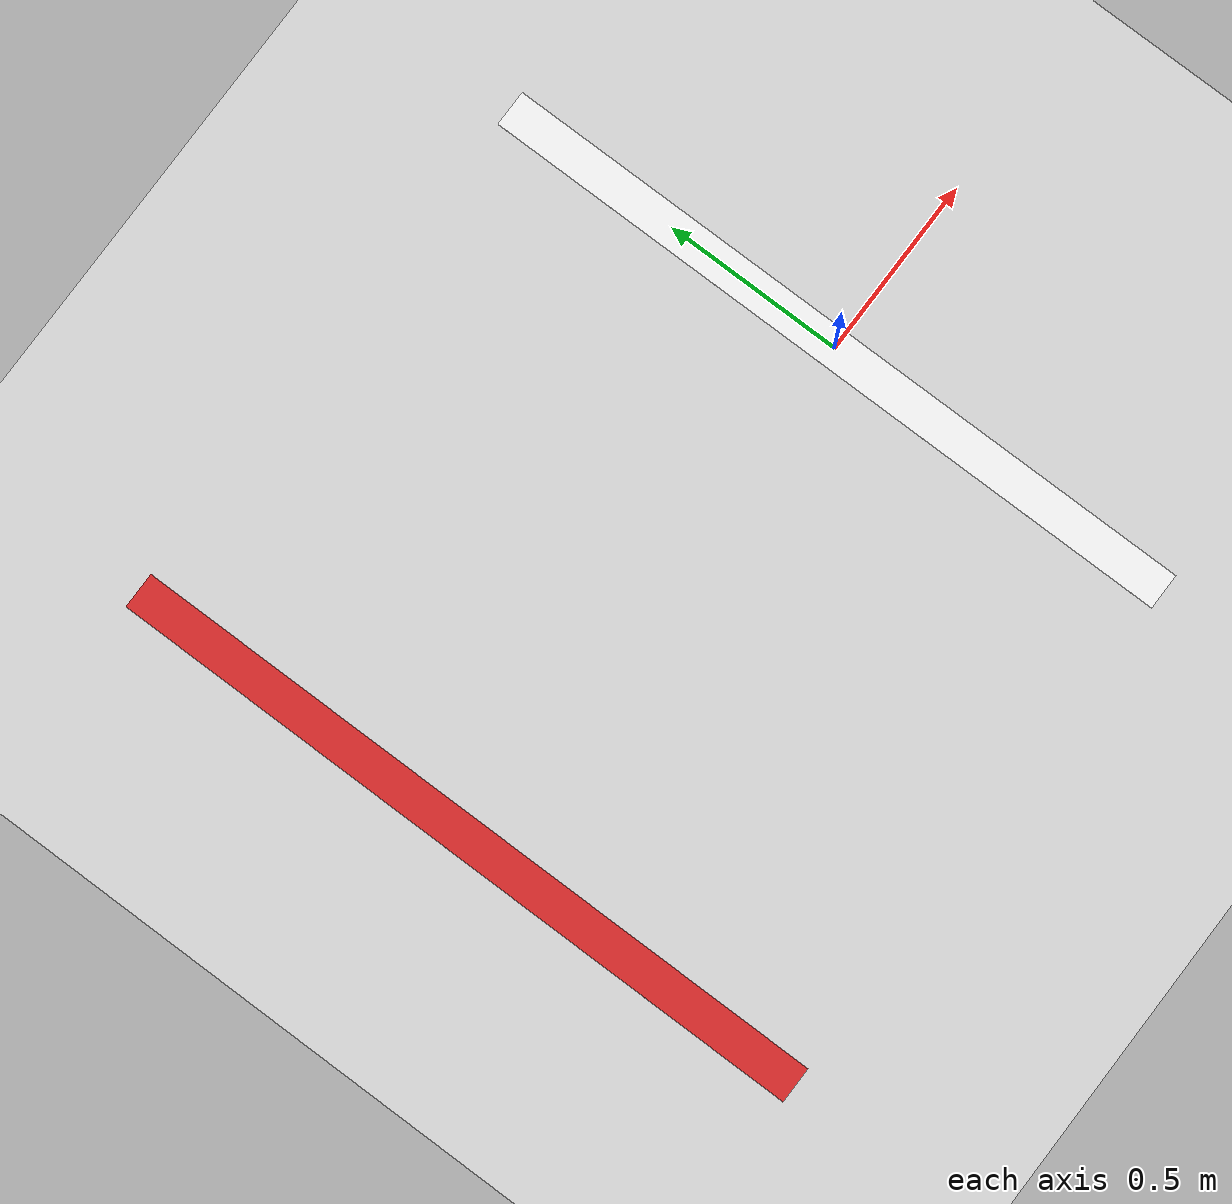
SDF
<sdf version="1.4">
 <world name="default">
  <gravity>0.000000 0.000000 -9.810000</gravity>
  <light name="sun" type="directional">
   <pose>0 0 10 0 -0 0</pose>
   <diffuse>0.8 0.8 0.8 1</diffuse>
   <specular>0.2 0.2 0.2 1</specular>
   <attenuation>
    <range>1000</range>
    <constant>0.9</constant>
    <linear>0.01</linear>
    <quadratic>0.001</quadratic>
   </attenuation>
   <direction>-0.5 0.1 -0.9</direction>
  </light>
  <physics type="ode">
   <gravity>0.000000 0.000000 -9.810000</gravity>
   <ode>
    <solver><type>quick</type><iters>100</iters><precon_iters>0</precon_iters><sor>1.000000</sor></solver>
    <constraints>
     <cfm>0.000000</cfm>
     <erp>0.500000</erp>
     <contact_max_correcting_vel>1000.000000</contact_max_correcting_vel>
     <contact_surface_layer>0.00000</contact_surface_layer>
    </constraints>
   </ode>
  </physics>
  <model name="ground_plane">
   <static>1</static>
   <link name="link">
    <collision name="collision">
     <geometry><plane><normal>0 0 1</normal><size>100 100</size></plane></geometry>
     <surface><friction><ode><mu>100</mu><mu2>50</mu2><fdir1>1 0 0</fdir1></ode></friction></surface>
    </collision>
    <visual name="visual">
     <cast_shadows>0</cast_shadows>
     <geometry><plane><normal>0 0 1</normal><size>100 100</size></plane></geometry>
     <material>
      <script><uri>file://media/materials/scripts/gazebo.material</uri><name>Gazebo/Grey</name></script>
     </material>
    </visual>
    <velocity_decay><linear>0</linear><angular>0</angular></velocity_decay>
   </link>
  </model>
  <scene><ambient>0.4 0.4 0.4 1</ambient><background>0.7 0.7 0.7 1</background><shadows>1</shadows></scene>
  <spherical_coordinates>
   <surface_model>EARTH_WGS84</surface_model>
   <latitude_deg>0</latitude_deg>
   <longitude_deg>0</longitude_deg>
   <elevation>0</elevation>
   <heading_deg>0</heading_deg>
  </spherical_coordinates>
  <model name="start_line">
   <static>1</static>
   <link name="link">
    <visual name="visual">
     <geometry><plane><size>0.1 2</size></plane></geometry>
     <material>
      <script><name>Gazebo/WhiteGlow</name><uri>file://media/materials/scripts/gazebo.material</uri></script>
     </material>
    </visual>
   </link>
  </model>
  <model name="finish_line">
   <static>1</static>
   <link name="link">
    <visual name="visual">
     <geometry><plane><size>0.1 2</size></plane></geometry>
     <material>
      <script><name>Gazebo/RedBright</name><uri>file://media/materials/scripts/gazebo.material</uri></script>
     </material>
    </visual>
   </link>
   <pose>-1.5 0.0 0 0 -0 0</pose>
  </model>
 </world>
</sdf>
